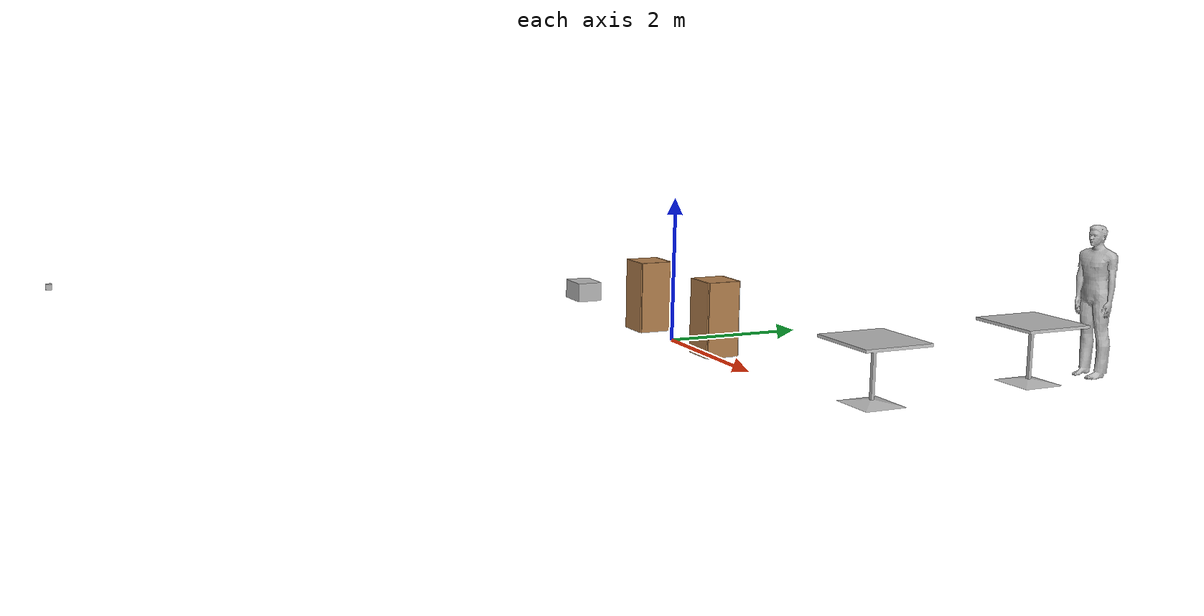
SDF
<?xml version='1.0'?>
<sdf version='1.7'>
  <model name='Untitled'>
    <model name='cabinet'>
      <static>1</static>
      <link name='cabinet_bottom_plate'>
        <inertial>
          <pose>0 0 -1 0 -0 0</pose>
          <inertia>
            <ixx>2.05</ixx>
            <ixy>0</ixy>
            <ixz>0</ixz>
            <iyy>2.05</iyy>
            <iyz>0</iyz>
            <izz>2.05</izz>
          </inertia>
          <mass>25</mass>
        </inertial>
        <collision name='cabinet_bottom_plate_geom'>
          <pose>0 0 0.01 0 -0 0</pose>
          <geometry>
            <box>
              <size>0.45 0.45 0.02</size>
            </box>
          </geometry>
        </collision>
        <visual name='cabinet_bottom_plate_geom_visual'>
          <pose>0 0 0.01 0 -0 0</pose>
          <geometry>
            <box>
              <size>0.45 0.45 0.02</size>
            </box>
          </geometry>
          <material>
            <script>
              <uri>file://media/materials/scripts/gazebo.material</uri>
              <name>Gazebo/Wood</name>
            </script>
          </material>
        </visual>
        <collision name='cabinet_bottom_plate_geom_cabinet_back_plate'>
          <pose>0.235 0 0.51 0 -0 0</pose>
          <geometry>
            <box>
              <size>0.02 0.45 1.02</size>
            </box>
          </geometry>
        </collision>
        <visual name='cabinet_bottom_plate_geom_cabinet_back_plate_visual'>
          <pose>0.235 0 0.51 0 -0 0</pose>
          <geometry>
            <box>
              <size>0.02 0.45 1.02</size>
            </box>
          </geometry>
          <material>
            <script>
              <uri>file://media/materials/scripts/gazebo.material</uri>
              <name>Gazebo/Wood</name>
            </script>
          </material>
        </visual>
        <collision name='cabinet_bottom_plate_geom_cabinet_left_plate'>
          <pose>0 0.235 0.51 0 -0 0</pose>
          <geometry>
            <box>
              <size>0.45 0.02 1.02</size>
            </box>
          </geometry>
        </collision>
        <visual name='cabinet_bottom_plate_geom_cabinet_left_plate_visual'>
          <pose>0 0.235 0.51 0 -0 0</pose>
          <geometry>
            <box>
              <size>0.45 0.02 1.02</size>
            </box>
          </geometry>
          <material>
            <script>
              <uri>file://media/materials/scripts/gazebo.material</uri>
              <name>Gazebo/Wood</name>
            </script>
          </material>
        </visual>
        <collision name='cabinet_bottom_plate_geom_cabinet_middle_plate'>
          <pose>0 0 0.51 0 -0 0</pose>
          <geometry>
            <box>
              <size>0.45 0.45 0.02</size>
            </box>
          </geometry>
        </collision>
        <visual name='cabinet_bottom_plate_geom_cabinet_middle_plate_visual'>
          <pose>0 0 0.51 0 -0 0</pose>
          <geometry>
            <box>
              <size>0.45 0.45 0.02</size>
            </box>
          </geometry>
          <material>
            <script>
              <uri>file://media/materials/scripts/gazebo.material</uri>
              <name>Gazebo/Wood</name>
            </script>
          </material>
        </visual>
        <collision name='cabinet_bottom_plate_geom_cabinet_right_plate'>
          <pose>0 -0.235 0.51 0 -0 0</pose>
          <geometry>
            <box>
              <size>0.45 0.02 1.02</size>
            </box>
          </geometry>
        </collision>
        <visual name='cabinet_bottom_plate_geom_cabinet_right_plate_visual'>
          <pose>0 -0.235 0.51 0 -0 0</pose>
          <geometry>
            <box>
              <size>0.45 0.02 1.02</size>
            </box>
          </geometry>
          <material>
            <script>
              <uri>file://media/materials/scripts/gazebo.material</uri>
              <name>Gazebo/Wood</name>
            </script>
          </material>
        </visual>
        <collision name='cabinet_bottom_plate_geom_cabinet_top_plate'>
          <pose>0 0 1.01 0 -0 0</pose>
          <geometry>
            <box>
              <size>0.45 0.45 0.02</size>
            </box>
          </geometry>
        </collision>
        <visual name='cabinet_bottom_plate_geom_cabinet_top_plate_visual'>
          <pose>0 0 1.01 0 -0 0</pose>
          <geometry>
            <box>
              <size>0.45 0.45 0.02</size>
            </box>
          </geometry>
          <material>
            <script>
              <uri>file://media/materials/scripts/gazebo.material</uri>
              <name>Gazebo/Wood</name>
            </script>
          </material>
        </visual>
      </link>
      <pose>0.860668 0.156982 -0.021429 0 -0 0</pose>
    </model>
    <model name='cabinet_0'>
      <static>1</static>
      <link name='cabinet_bottom_plate'>
        <inertial>
          <pose>0 0 -1 0 -0 0</pose>
          <inertia>
            <ixx>2.05</ixx>
            <ixy>0</ixy>
            <ixz>0</ixz>
            <iyy>2.05</iyy>
            <iyz>0</iyz>
            <izz>2.05</izz>
          </inertia>
          <mass>25</mass>
        </inertial>
        <collision name='cabinet_bottom_plate_geom'>
          <pose>0 0 0.01 0 -0 0</pose>
          <geometry>
            <box>
              <size>0.45 0.45 0.02</size>
            </box>
          </geometry>
        </collision>
        <visual name='cabinet_bottom_plate_geom_visual'>
          <pose>0 0 0.01 0 -0 0</pose>
          <geometry>
            <box>
              <size>0.45 0.45 0.02</size>
            </box>
          </geometry>
          <material>
            <script>
              <uri>file://media/materials/scripts/gazebo.material</uri>
              <name>Gazebo/Wood</name>
            </script>
          </material>
        </visual>
        <collision name='cabinet_bottom_plate_geom_cabinet_back_plate'>
          <pose>0.235 0 0.51 0 -0 0</pose>
          <geometry>
            <box>
              <size>0.02 0.45 1.02</size>
            </box>
          </geometry>
        </collision>
        <visual name='cabinet_bottom_plate_geom_cabinet_back_plate_visual'>
          <pose>0.235 0 0.51 0 -0 0</pose>
          <geometry>
            <box>
              <size>0.02 0.45 1.02</size>
            </box>
          </geometry>
          <material>
            <script>
              <uri>file://media/materials/scripts/gazebo.material</uri>
              <name>Gazebo/Wood</name>
            </script>
          </material>
        </visual>
        <collision name='cabinet_bottom_plate_geom_cabinet_left_plate'>
          <pose>0 0.235 0.51 0 -0 0</pose>
          <geometry>
            <box>
              <size>0.45 0.02 1.02</size>
            </box>
          </geometry>
        </collision>
        <visual name='cabinet_bottom_plate_geom_cabinet_left_plate_visual'>
          <pose>0 0.235 0.51 0 -0 0</pose>
          <geometry>
            <box>
              <size>0.45 0.02 1.02</size>
            </box>
          </geometry>
          <material>
            <script>
              <uri>file://media/materials/scripts/gazebo.material</uri>
              <name>Gazebo/Wood</name>
            </script>
          </material>
        </visual>
        <collision name='cabinet_bottom_plate_geom_cabinet_middle_plate'>
          <pose>0 0 0.51 0 -0 0</pose>
          <geometry>
            <box>
              <size>0.45 0.45 0.02</size>
            </box>
          </geometry>
        </collision>
        <visual name='cabinet_bottom_plate_geom_cabinet_middle_plate_visual'>
          <pose>0 0 0.51 0 -0 0</pose>
          <geometry>
            <box>
              <size>0.45 0.45 0.02</size>
            </box>
          </geometry>
          <material>
            <script>
              <uri>file://media/materials/scripts/gazebo.material</uri>
              <name>Gazebo/Wood</name>
            </script>
          </material>
        </visual>
        <collision name='cabinet_bottom_plate_geom_cabinet_right_plate'>
          <pose>0 -0.235 0.51 0 -0 0</pose>
          <geometry>
            <box>
              <size>0.45 0.02 1.02</size>
            </box>
          </geometry>
        </collision>
        <visual name='cabinet_bottom_plate_geom_cabinet_right_plate_visual'>
          <pose>0 -0.235 0.51 0 -0 0</pose>
          <geometry>
            <box>
              <size>0.45 0.02 1.02</size>
            </box>
          </geometry>
          <material>
            <script>
              <uri>file://media/materials/scripts/gazebo.material</uri>
              <name>Gazebo/Wood</name>
            </script>
          </material>
        </visual>
        <collision name='cabinet_bottom_plate_geom_cabinet_top_plate'>
          <pose>0 0 1.01 0 -0 0</pose>
          <geometry>
            <box>
              <size>0.45 0.45 0.02</size>
            </box>
          </geometry>
        </collision>
        <visual name='cabinet_bottom_plate_geom_cabinet_top_plate_visual'>
          <pose>0 0 1.01 0 -0 0</pose>
          <geometry>
            <box>
              <size>0.45 0.45 0.02</size>
            </box>
          </geometry>
          <material>
            <script>
              <uri>file://media/materials/scripts/gazebo.material</uri>
              <name>Gazebo/Wood</name>
            </script>
          </material>
        </visual>
      </link>
      <pose>-0.940093 0.105763 -0.021429 0 -0 0</pose>
    </model>
    <model name='cafe_table'>
      <static>1</static>
      <link name='link'>
        <collision name='surface'>
          <pose>0 0 0.755 0 -0 0</pose>
          <geometry>
            <box>
              <size>0.913 0.913 0.04</size>
            </box>
          </geometry>
        </collision>
        <collision name='column'>
          <pose>0 0 0.37 0 -0 0</pose>
          <geometry>
            <box>
              <size>0.042 0.042 0.74</size>
            </box>
          </geometry>
        </collision>
        <collision name='base'>
          <pose>0 0 0.02 0 -0 0</pose>
          <geometry>
            <box>
              <size>0.56 0.56 0.04</size>
            </box>
          </geometry>
        </collision>
        <visual name='visual'>
          <geometry>
            <mesh>
              <uri>model://cafe_table/meshes/cafe_table.dae</uri>
            </mesh>
          </geometry>
        </visual>
      </link>
      <pose>3.78599 0.528414 -0.021429 0 -0 0</pose>
    </model>
    <model name='cafe_table_0'>
      <static>1</static>
      <link name='link'>
        <collision name='surface'>
          <pose>0 0 0.755 0 -0 0</pose>
          <geometry>
            <box>
              <size>0.913 0.913 0.04</size>
            </box>
          </geometry>
        </collision>
        <collision name='column'>
          <pose>0 0 0.37 0 -0 0</pose>
          <geometry>
            <box>
              <size>0.042 0.042 0.74</size>
            </box>
          </geometry>
        </collision>
        <collision name='base'>
          <pose>0 0 0.02 0 -0 0</pose>
          <geometry>
            <box>
              <size>0.56 0.56 0.04</size>
            </box>
          </geometry>
        </collision>
        <visual name='visual'>
          <geometry>
            <mesh>
              <uri>model://cafe_table/meshes/cafe_table.dae</uri>
            </mesh>
          </geometry>
        </visual>
      </link>
      <pose>3.64569 2.95956 -0.021429 0 -0 0</pose>
    </model>
    <model name='cardboard_box'>
      <pose>-3.47693 0.248986 0.128571 0 -0 0</pose>
      <link name='link'>
        <inertial>
          <mass>2</mass>
          <inertia>
            <ixx>0.0416667</ixx>
            <ixy>0</ixy>
            <ixz>0</ixz>
            <iyy>0.0566667</iyy>
            <iyz>0</iyz>
            <izz>0.0683333</izz>
          </inertia>
        </inertial>
        <collision name='collision'>
          <geometry>
            <box>
              <size>0.5 0.4 0.3</size>
            </box>
          </geometry>
          <surface>
            <friction>
              <ode>
                <mu>1</mu>
                <mu2>1</mu2>
              </ode>
            </friction>
            <contact>
              <ode>
                <kp>1e+07</kp>
                <kd>1</kd>
                <min_depth>0.001</min_depth>
                <max_vel>0.1</max_vel>
              </ode>
            </contact>
          </surface>
        </collision>
        <visual name='visual'>
          <pose>0 0 -0.15 0 -0 0</pose>
          <geometry>
            <mesh>
              <uri>model://cardboard_box/meshes/cardboard_box.dae</uri>
              <scale>1.25932 1.00745 0.755591</scale>
            </mesh>
          </geometry>
        </visual>
      </link>
    </model>
    <model name='depth_camera'>
      <link name='link'>
        <pose>0 0 0.05 0 -0 0</pose>
        <inertial>
          <mass>0.1</mass>
          <inertia>
            <ixx>0.000166667</ixx>
            <iyy>0.000166667</iyy>
            <izz>0.000166667</izz>
            <ixy>0</ixy>
            <ixz>0</ixz>
            <iyz>0</iyz>
          </inertia>
        </inertial>
        <collision name='collision'>
          <geometry>
            <box>
              <size>0.1 0.1 0.1</size>
            </box>
          </geometry>
        </collision>
        <visual name='visual'>
          <geometry>
            <box>
              <size>0.1 0.1 0.1</size>
            </box>
          </geometry>
        </visual>
        <sensor name='camera' type='depth'>
          <camera>
            <horizontal_fov>1.047</horizontal_fov>
            <image>
              <width>320</width>
              <height>240</height>
            </image>
            <clip>
              <near>0.1</near>
              <far>100</far>
            </clip>
          </camera>
          <always_on>1</always_on>
          <update_rate>30</update_rate>
          <visualize>1</visualize>
        </sensor>
      </link>
      <pose>-7.56467 -7.96767 -0.021429 0 -0 0</pose>
    </model>
    <model name='person_standing'>
      <link name='link'>
        <inertial>
          <pose>0 -0.1 0.95 0 -0 0</pose>
          <mass>80</mass>
          <inertia>
            <ixx>24.88</ixx>
            <ixy>0</ixy>
            <ixz>0</ixz>
            <iyy>25.73</iyy>
            <iyz>0</iyz>
            <izz>2.48</izz>
          </inertia>
        </inertial>
        <collision name='bottom'>
          <pose>0 -0.1 0.01 0 -0 0</pose>
          <geometry>
            <box>
              <size>0.5 0.35 0.02</size>
            </box>
          </geometry>
        </collision>
        <collision name='person'>
          <pose>0 0 0.02 0.04 -0 0</pose>
          <geometry>
            <mesh>
              <uri>model://person_standing/meshes/standing.dae</uri>
            </mesh>
          </geometry>
        </collision>
        <visual name='visual'>
          <pose>0 0 0.02 0.04 -0 0</pose>
          <geometry>
            <mesh>
              <uri>model://person_standing/meshes/standing.dae</uri>
            </mesh>
          </geometry>
        </visual>
      </link>
      <pose>3.68934 3.96798 -0.021429 0 -0 0</pose>
    </model>
    <static>0</static>
    <allow_auto_disable>1</allow_auto_disable>
  </model>
</sdf>
